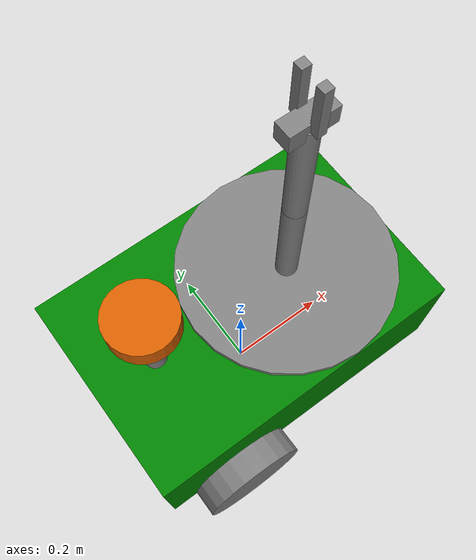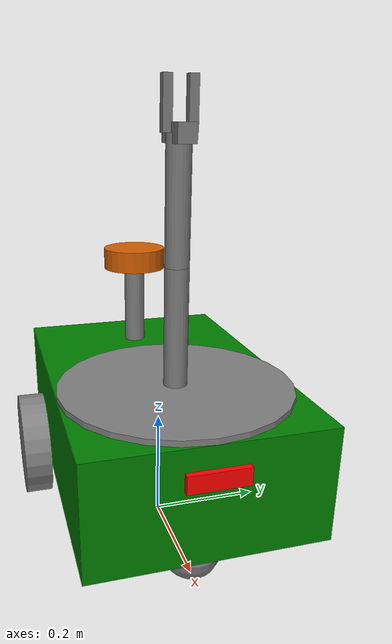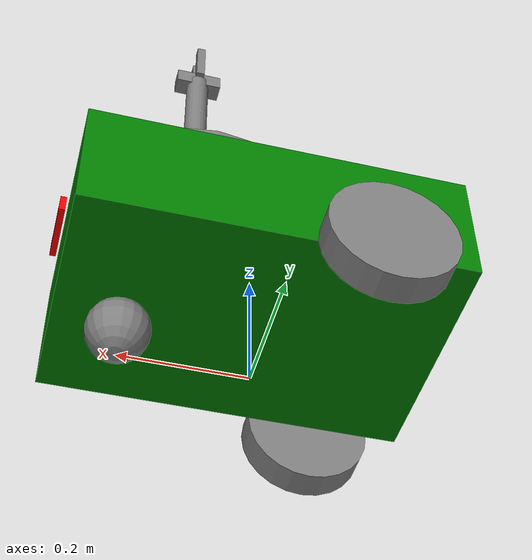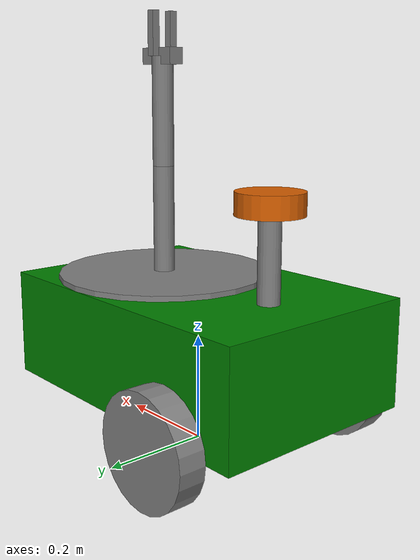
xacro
<?xml version="1.0"?>
<robot name="my_robot" xmlns:xacro="http://www.ros.org/wiki/xacro">

    <xacro:include filename="common_properties.xacro" />
    <xacro:include filename="mobile_base.xacro" />
    <xacro:include filename="mobile_base_gazebo.xacro" />
    <xacro:include filename="robotic_arm.xacro" />
    <xacro:include filename="camera.xacro" />
    <xacro:include filename="lidar.xacro" />

</robot>

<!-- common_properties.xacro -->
<robot xmlns:xacro="http://www.ros.org/wiki/xacro">
    <material name="green">
        <color rgba="0 0.5 0 1" />
    </material>

    <material name="grey">
        <color rgba="0.5 0.5 0.5 1" />
    </material>

    <material name="red">
        <color rgba="1 0 0 1" />
    </material>

    <material name="black">
        <color rgba="0 0 0 1" />
    </material>

    <xacro:macro name="box_inertia" params="m x y z o_xyz o_rpy" >
        <inertial>
            <mass value="${m}" />
            <origin xyz="${o_xyz}" rpy="${o_rpy}" />
            <inertia ixx="${m/12 * (y*y + z*z)}" ixy="0" ixz="0"
                     iyy="${m/12 * (x*x + z*z)}" iyz="0"
                     izz="${m/12 * (x*x + y*y)}" />

        </inertial>
    </xacro:macro>

    <xacro:macro name="sphere_inertia" params="m r o_xyz o_rpy" >
        <inertial>
            <mass value="${m}" />
            <origin xyz="${o_xyz}" rpy="${o_rpy}" />
            <inertia ixx="${2*m*r*r/5}" ixy="0" ixz="0"
                            iyy="${2*m*r*r/5}" iyz="0"
                                   izz="${2*m*r*r/5}" />
        </inertial>
    </xacro:macro>

    <xacro:macro name="cylinder_inertia" params="m r h o_xyz o_rpy" >
        <inertial>
            <mass value="${m}" />
            <origin xyz="${o_xyz}" rpy="${o_rpy}" />
            <inertia ixx="${m/12 * (3*r*r+h*h)}" ixy="0" ixz="0"
                            iyy="${m/12 * (3*r*r+h*h)}" iyz="0"
                                   izz="${m*r*r/2}"/>
        </inertial>
    </xacro:macro>
</robot>

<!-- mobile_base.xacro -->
<robot xmlns:xacro="http://www.ros.org/wiki/xacro">

    <xacro:property name="base_length" value="0.6" />
    <xacro:property name="base_width" value="0.4" />
    <xacro:property name="base_height" value="0.2" />
    <xacro:property name="wheel_radius" value="0.1" />
    <xacro:property name="wheel_length" value="0.05" />

    <link name="base_link">
        <visual>
            <geometry>
                <box size="${base_length} ${base_width} ${base_height}" />
            </geometry>
            <origin xyz="0 0 0.1" rpy="0 0 0" />
            <material name="green" />
        </visual>
        <collision>
            <geometry>
                <box size="${base_length} ${base_width} ${base_height}" />
            </geometry>
            <origin xyz="0 0 0.1" rpy="0 0 0" />
        </collision>
        <xacro:box_inertia m="5.0" x="${base_length}" y="${base_width}" z="${base_height}"
                           o_xyz="0 0 0.1" o_rpy="0 0 0" />
    </link>

    <xacro:macro name="wheel_link" params="prefix">
        <link name="${prefix}_wheel_link">
            <visual>
                <geometry>
                    <cylinder radius="${wheel_radius}" length="${wheel_length}" />
                </geometry>
            <origin xyz="0 0 0" rpy="${pi / 2.0} 0 0" />
            <material name="grey" />
            </visual>
            <collision>
                <geometry>
                    <sphere radius="${wheel_radius}" />
                </geometry>
                <origin xyz="0 0 0" rpy="0 0 0" />
            </collision>
            <xacro:cylinder_inertia m="2.0" r="${wheel_radius}" h="${wheel_length}"
                                    o_xyz="0 0 0" o_rpy="${pi / 2.0} 0 0" />
        </link>
    </xacro:macro>

    <xacro:wheel_link prefix="right" />
    <xacro:wheel_link prefix="left" />

        <link name="sphere_link">
        <visual>
            <geometry>
                <sphere radius="${wheel_radius / 2.0}" />
            </geometry>
            <origin xyz="0 0 0" rpy="0 0 0" />
            <material name="grey" />
        </visual>
        <collision>
            <geometry>
                <sphere radius="${wheel_radius / 2.0}" />
            </geometry>
            <origin xyz="0 0 0" rpy="0 0 0" />
        </collision>
        <xacro:sphere_inertia m="1.0" r="${wheel_radius / 2.0}"
                             o_xyz="0 0 0" o_rpy="0 0 0" />
    </link>

    <link name="base_footprint">

    </link>

    <joint name="base_right_wheel_joint" type="continuous">
        <parent link="base_link" />
        <child link="right_wheel_link" />
        <origin xyz="${-base_length/4.0} -0.225 0" rpy="0 0 0" />
        <axis xyz="0 1 0" />
    </joint>

    <joint name="base_left_wheel_joint" type="continuous">
        <parent link="base_link" />
        <child link="left_wheel_link" />
        <origin xyz="${-base_length/4.0} 0.225 0" rpy="0 0 0" />
        <axis xyz="0 1 0" />
    </joint>

    <joint name="base_sphere_joint" type="fixed">
        <parent link="base_link" />
        <child link="sphere_link" />
        <origin xyz="${base_length/3.0} 0 -0.05" rpy="0 0 0" />
    </joint>

    <joint name="footprint_base_joint" type="fixed">
        <parent link="base_footprint" />
        <child link="base_link" />
        <origin xyz="0 0 0.1" rpy="0 0 0" />
    </joint>
</robot>

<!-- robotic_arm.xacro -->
<robot xmlns:xacro="http://www.ros.org/wiki/xacro">

    <xacro:macro name="arm_link" params="prefix">
        <link name="arm_${prefix}_link">
            <visual>
                <origin xyz="0 0 0.1" rpy="0 0 0" />
                <geometry>
                    <cylinder radius="0.02" length="0.2" />
                </geometry>
                <material name="grey" />
            </visual>

            <collision>
                <origin xyz="0 0 0.1" rpy="0 0 0" />
                <geometry>
                    <cylinder radius="0.015" length="0.08" />
                </geometry>
            </collision>

            <xacro:cylinder_inertia
                m="2.0"
                r="0.02"
                h="0.1"
                o_xyz="0 0 0"
                o_rpy="0 0 0" />
        </link>
    </xacro:macro>

    <xacro:arm_link prefix="1" />
    <xacro:arm_link prefix="2" />

    <link name="arm_base">
        <visual>
            <origin xyz="0 0 0" rpy="0 0 0" />
            <geometry>
                <cylinder radius="0.2" length="0.02" />
            </geometry>
            <material name="grey" />
        </visual>

        <collision>
            <origin xyz="0 0 0" rpy="0 0 0" />
            <geometry>
                <cylinder radius="0.2" length="0.02" />
            </geometry>
        </collision>

        <xacro:cylinder_inertia
            m="2.0"
            r="0.2"
            h="0.02"
            o_xyz="0 0 0"
            o_rpy="0 0 0" />
    </link>

    <!-- gripper -->
    <link name="gripper_base">
        <visual>
            <origin xyz="0 0 0" rpy="0 0 0" />
            <geometry>
                <box size="0.08 0.03 0.03" />
            </geometry>
            <material name="grey" />
        </visual>

    </link>

    <joint name="arm2_gripper_base_joint" type="fixed">
        <parent link="arm_2_link" />
        <child link="gripper_base" />
        <origin xyz="0 0 0.2" rpy="0 0 0" />
    </joint>

    <link name="left_finger">
        <visual>
            <origin xyz="0 0 0.04" rpy="0 0 0" />
            <geometry>
                <box size="0.015 0.015 0.08" />
            </geometry>
            <material name="grey" />
        </visual>

        <collision>
            <origin xyz="0 0 0.04" rpy="0 0 0" />
            <geometry>
                <box size="0.015 0.015 0.08" />
            </geometry>
          <surface>
            <friction>
              <ode>
                <mu>2.0</mu>
                <mu2>2.0</mu2>
              </ode>
            </friction>
          </surface>
        </collision>

        <inertial>
            <origin xyz="0 0 0.04" rpy="0 0 0" />
            <mass value="0.05" />
            <inertia
                ixx="0.00003" ixy="0.0" ixz="0.0"
                iyy="0.00003" iyz="0.0"
                izz="0.00001" />
        </inertial>
    </link>

    <link name="right_finger">
        <visual>
            <origin xyz="0 0 0.04" rpy="0 0 0" />
            <geometry>
                <box size="0.015 0.015 0.08" />
            </geometry>
            <material name="grey" />
        </visual>

        <collision>
            <origin xyz="0 0 0.04" rpy="0 0 0" />
            <geometry>
                <box size="0.015 0.015 0.08" />
            </geometry>
          <surface>
            <friction>
              <ode>
                <mu>2.0</mu>
                <mu2>2.0</mu2>
              </ode>
            </friction>
          </surface>
        </collision>

        <inertial>
            <origin xyz="0 0 0.04" rpy="0 0 0" />
            <mass value="0.05" />
            <inertia
                ixx="0.00003" ixy="0.0" ixz="0.0"
                iyy="0.00003" iyz="0.0"
                izz="0.00001" />
        </inertial>
    </link>

    <joint name="gripper_left_finger_joint" type="prismatic">
        <parent link="gripper_base" />
        <child link="left_finger" />
        <origin xyz="0 0.02 0" rpy="0 0 0" />
        <axis xyz="0 1 0" />
        <limit lower="0.0" upper="0.03" effort="5.0" velocity="0.2" />
    </joint>

    <joint name="gripper_right_finger_joint" type="prismatic">
        <parent link="gripper_base" />
        <child link="right_finger" />
        <origin xyz="0 -0.02 0" rpy="0 0 0" />
        <axis xyz="0 -1 0" />
        <limit lower="0.0" upper="0.03" effort="5.0" velocity="0.2" />
    </joint>

    <!-- arm joints -->
    <joint name="base_arm_base_joint" type="revolute">
        <parent link="base_link" />
        <child link="arm_base" />
        <origin xyz="0.1 0 0.2" rpy="0 0 0" />
        <axis xyz="0 0 1" />
        <limit lower="${-pi}" upper="${pi}" effort="10.0" velocity="1.0" />
    </joint>

    <joint name="base_arm_arm1_joint" type="revolute">
        <parent link="arm_base" />
        <child link="arm_1_link" />
        <origin xyz="0 0 0.01" rpy="0 0 0"/>
        <axis xyz="0 1 0" />
        <limit lower="0" upper="${9*pi/20}" effort="10.0" velocity="1.0" />
    </joint>

    <joint name="arm1_arm2_joint" type="revolute">
        <parent link="arm_1_link" />
        <child link="arm_2_link" />
        <origin xyz="0 0 0.2" rpy="0 0 0"/>
        <axis xyz="0 1 0" />
        <limit lower="0" upper="${9*pi/20}" effort="10.0" velocity="1.0" />
    </joint>

    <!-- ros2_control -->
    <ros2_control name="GazeboSystem" type="system">
        <hardware>
            <plugin>gz_ros2_control/GazeboSimSystem</plugin>
        </hardware>

        <joint name="base_arm_base_joint">
            <command_interface name="position" />
            <state_interface name="position" />
            <state_interface name="velocity" />
        </joint>

        <joint name="base_arm_arm1_joint">
            <command_interface name="position" />
            <state_interface name="position" />
            <state_interface name="velocity" />
        </joint>

        <joint name="arm1_arm2_joint">
            <command_interface name="position" />
            <state_interface name="position" />
            <state_interface name="velocity" />
        </joint>

        <joint name="gripper_left_finger_joint">
            <command_interface name="position" />
            <state_interface name="position" />
            <state_interface name="velocity" />
        </joint>

        <joint name="gripper_right_finger_joint">
            <command_interface name="position" />
            <state_interface name="position" />
            <state_interface name="velocity" />
        </joint>
    </ros2_control>

</robot>

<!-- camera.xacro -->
<robot xmlns:xacro="http://www.ros.org/wiki/xacro">
    <link name="camera_link">
        <visual>
            <geometry>
                <box size="0.01 0.1 0.03"/>
            </geometry>
            <origin xyz="0.01 0 0" rpy="0 0 0" />
            <material name="red" />
        </visual>
        <xacro:box_inertia m="0.5" x="0.02" y="0.01" z="0.05"
                           o_xyz="0 0 0" o_rpy="0 0 0" />
    </link>

    <joint name="base_camera_joint" type="fixed">
        <parent link="base_link" />
        <child link="camera_link" />
        <origin xyz="0.3 0 0.15" rpy="0 0 0"/>
    </joint>

    <link name="camera_link_optical">

    </link>

    <joint name="camera_optical_joint" type="fixed">
        <!-- these values have to be these values otherwise the gazebo camera
            image won't be aligned properly with the frame it is supposedly
            originating from -->
        <origin xyz="0 0 0" rpy="${-pi/2} 0 ${-pi/2}"/>
        <parent link="camera_link"/>
        <child link="camera_link_optical"/>
    </joint>

    <gazebo reference="camera_link">
    <sensor name="depth_camera" type="depth_camera">
        <always_on>true</always_on>
        <update_rate>30</update_rate>
        <topic>/camera/depth/image</topic>
        <gz_frame_id>camera_link_optical</gz_frame_id>

        <camera>
        <camera_info_topic>/camera/depth/camera_info</camera_info_topic>
        <horizontal_fov>1.047</horizontal_fov>
        <image>
            <width>640</width>
            <height>480</height>
            <format>R_FLOAT32</format>
        </image>
        <clip>
            <near>0.1</near>
            <far>10.0</far>
        </clip>
        </camera>

        <visualize>true</visualize>
    </sensor>
    </gazebo>

    <gazebo reference="camera_link">
        <sensor name="rgb_camera" type="camera">
            <always_on>true</always_on>
            <visualize>true</visualize>
            <update_rate>30</update_rate>
            <topic>/camera/rgb/image</topic>
            <gz_frame_id>camera_link_optical</gz_frame_id>

            <camera>
                <horizontal_fov>1.047</horizontal_fov>
                <image>
                    <width>640</width>
                    <height>480</height>
                    <format>R8G8B8</format>
                </image>
                <clip>
                    <near>0.1</near>
                    <far>10.0</far>
                </clip>
            </camera>
        </sensor>
    </gazebo>

</robot>

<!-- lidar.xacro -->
<robot xmlns:xacro="http://www.ros.org/wiki/xacro">

    <link name="lidar_link">
        <visual>
            <geometry>
                <cylinder radius="0.06" length="0.04" />
            </geometry>
            <origin xyz="0 0 0.02" rpy="0 0 0" />
        </visual>
        <xacro:cylinder_inertia m="0.5" r="0.06" h="0.04"
                                o_xyz="0 0 0" o_rpy="0 0 0" />
        <collision>
            <geometry>
                <cylinder radius="0.06" length="0.04" />
            </geometry>
        </collision>
    </link>

    <link name="lidar_base_link">
        <visual>
            <geometry>
                <cylinder radius="0.02" length="0.15" />
            </geometry>
            <origin xyz="0 0 0.075" rpy="0 0 0"/>
            <material name="grey" />
        </visual>
        <xacro:cylinder_inertia m="0.2" r="0.02" h="0.15"
                                o_xyz="0 0 0" o_rpy="0 0 0" />

    </link>

    <joint name="base_lidar_base_joint" type="fixed" >
        <parent link="base_link" />
        <child link="lidar_base_link" />
        <origin xyz="-0.18 0 0.2" rpy="0 0 0" />
    </joint>

    <joint name="lidar_base_lidar_joint" type="fixed">
        <parent link="lidar_base_link" />
        <child link="lidar_link" />
        <origin xyz="0 0 0.15" rpy="0 0 0" />
    </joint>

    <gazebo reference="lidar_link">
        <sensor name="lidar_sensor" type="gpu_lidar">
            <always_on>true</always_on>
            <visualize>true</visualize>
            <update_rate>10</update_rate>
            <topic>/scan</topic>
            <gz_frame_id>lidar_link</gz_frame_id>

            <ray>
                <scan>
                    <horizontal>
                        <samples>720</samples>
                        <resolution>1</resolution>
                        <min_angle>-3.14159</min_angle>
                        <max_angle>3.14159</max_angle>
                    </horizontal>
                </scan>

                <range>
                    <min>0.12</min>
                    <max>8.0</max>
                    <resolution>0.01</resolution>
                </range>

                <noise>
                    <type>gaussian</type>
                    <mean>0.0</mean>
                    <stddev>0.01</stddev>
                </noise>
            </ray>
        </sensor>
    </gazebo>

</robot>
